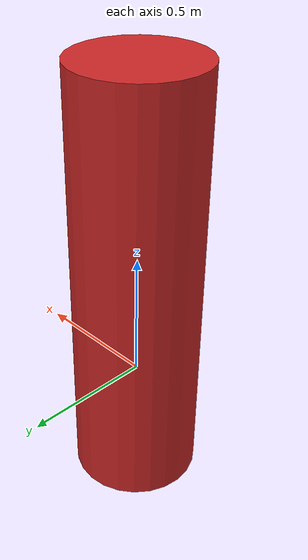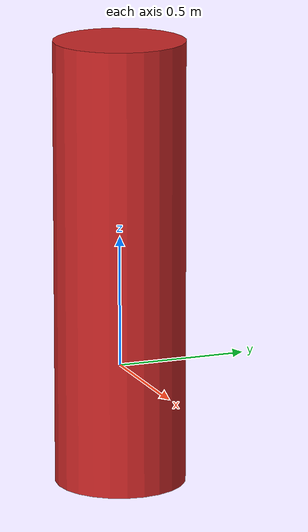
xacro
<?xml version="1.0"?>

<robot xmlns:xacro="http://ros.org/wiki/xacro">

  <xacro:include filename="$(find bender_gazebo)/urdf/common.urdf.xacro" />

  <link name="base_footprint">
   <visual>
      <origin xyz="0 0 0" rpy="0 0 0" />
      <geometry>
        <box size="0.001 0.001 0.001" />
      </geometry>
    </visual>
  </link>

  <joint name="base_link_joint" type="fixed">
    <origin xyz="0.0 0 0.4" rpy="0 0 0" />
    <parent link="base_footprint"/>
    <child link="base_link" />
  </joint>

  <!-- Ball -->
  <link name="base_link">
    <inertial>
      <mass value="0.01" />
      <origin xyz="0 0 0" />
      <inertia ixx="1.0" ixy="0.0" ixz="0.0"
        iyy="1.0" iyz="0.0"
        izz="1.0" />
    </inertial>
    <visual>
      <geometry>
        <cylinder length="1.7" radius="0.25" />
      </geometry>
      <material name="red" />
    </visual>
    <collision>
      <geometry>
        <cylinder length="1.7" radius="0.25" />
      </geometry>
    </collision>
  </link>

  <gazebo reference="base_link">
    <material>Gazebo/Red</material>
  </gazebo>

  <xacro:gazebo_object_drive base_frame="base_footprint" topic="cmd_vel" ns="cylinder" />

</robot>
